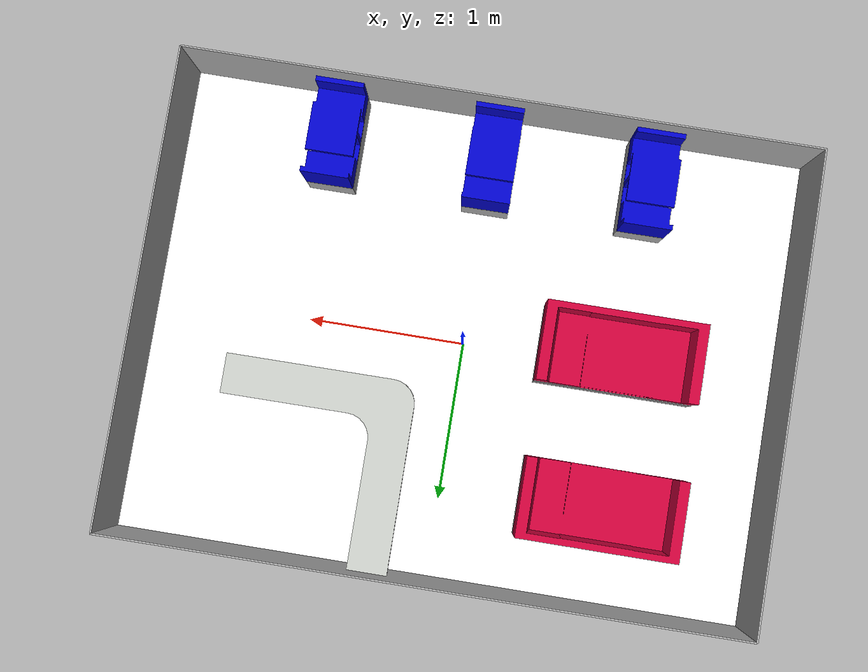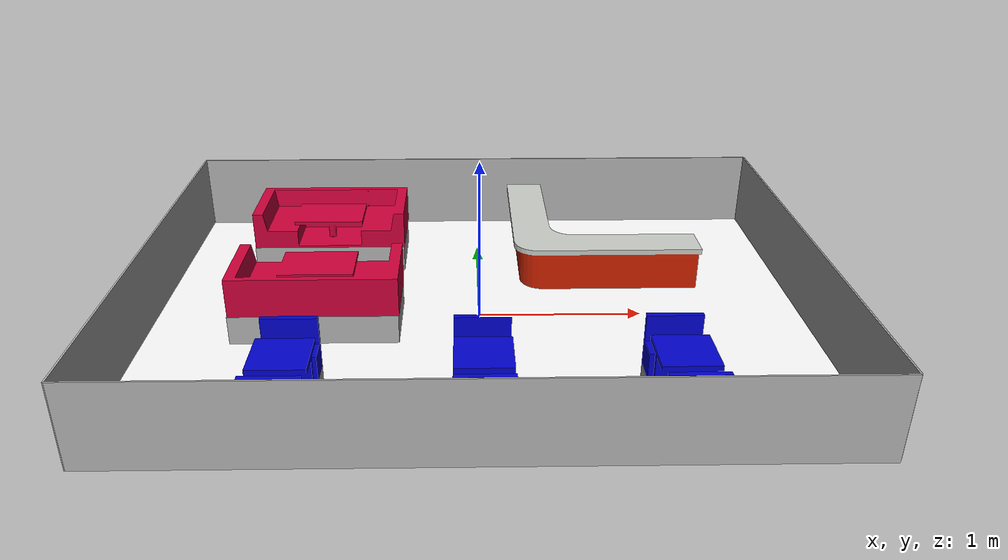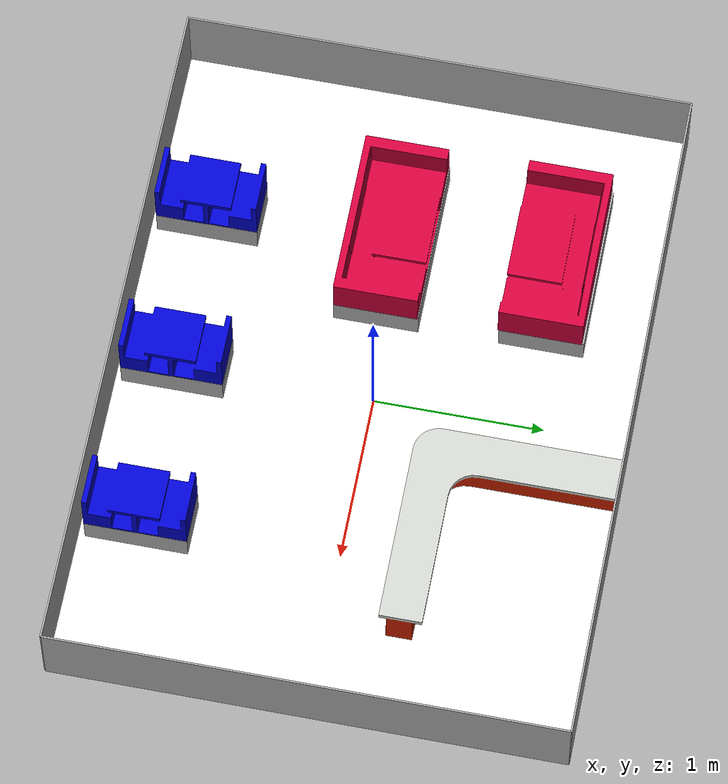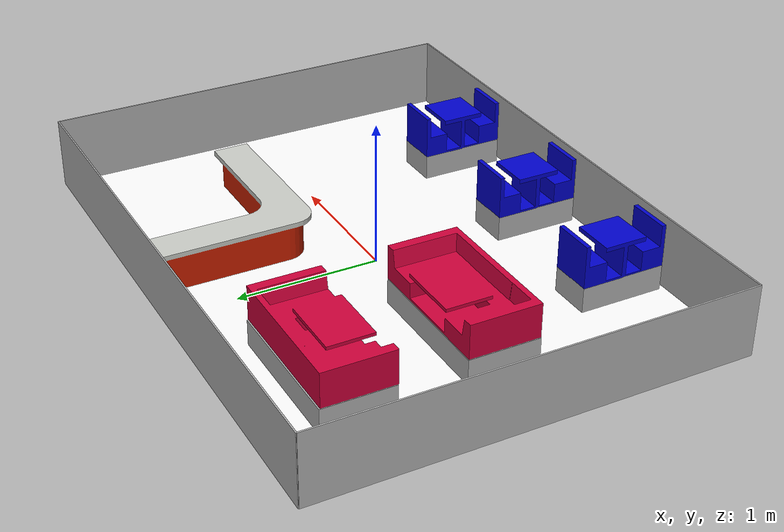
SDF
<sdf version="1.8">
 <world name="pinky_restaurant">
  <physics name="1ms" type="ignored">
   <max_step_size>0.001</max_step_size>
   <real_time_factor>1.0</real_time_factor>
  </physics>
  <plugin filename="gz-sim-physics-system" name="gz::sim::systems::Physics"/>
  <plugin filename="gz-sim-sensors-system" name="gz::sim::systems::Sensors">
   <render_engine>ogre2</render_engine>
  </plugin>
  <plugin filename="gz-sim-user-commands-system" name="gz::sim::systems::UserCommands"/>
  <plugin filename="gz-sim-scene-broadcaster-system" name="gz::sim::systems::SceneBroadcaster"/>
  <plugin filename="gz-sim-imu-system" name="gz::sim::systems::Imu"/>
  <light type="directional" name="sun">
   <cast_shadows>false</cast_shadows>
   <pose>0 0 2 0 0 0</pose>
   <diffuse>1 1 1 1</diffuse>
   <specular>1 1 1 1</specular>
   <attenuation><range>1000</range><constant>1</constant><linear>0</linear><quadratic>0</quadratic></attenuation>
   <direction>0 0 -1</direction>
  </light>
  <model name="logo">
   <static>true</static>
   <link name="logo_link">
    <visual name="logo_visual">
     <geometry><plane><normal>0 0 1</normal><size>4 3</size></plane></geometry>
     <material>
      <diffuse>1 1 1 1</diffuse>
      <specular>0.6 0.6 0.6 1</specular>
      <pbr><metal><albedo_map>file://img/pinklab_half.jpg</albedo_map></metal></pbr>
     </material>
    </visual>
    <collision name="logo_collision">
     <geometry><plane><normal>0 0 1</normal><size>4 2</size></plane></geometry>
     <surface><contact><collide_without_contact>true</collide_without_contact></contact></surface>
    </collision>
   </link>
  </model>
  <model name="station">
   <static>true</static>
   <pose>0.9 0.6 0 0 0 -3.14</pose>
   <link name="station_link">
    <visual name="station_visual">
     <geometry><mesh><uri>model://obj/station.dae</uri><scale>1 1 0.7</scale></mesh></geometry>
    </visual>
    <collision name="station_collision">
     <geometry><mesh><uri>model://obj/station.dae</uri><scale>1 1 0.7</scale></mesh></geometry>
    </collision>
   </link>
  </model>
  <model name="table1">
   <static>true</static>
   <pose>1.0 -1.157 0.18 0 0 -1.57</pose>
   <link name="table1_link">
    <visual name="table1_visual">
     <geometry><mesh><uri>model://obj/table.dae</uri><scale>1 1 1</scale></mesh></geometry>
    </visual>
    <collision name="table1_collision">
     <geometry><mesh><uri>model://obj/table.dae</uri><scale>1 1 1</scale></mesh></geometry>
    </collision>
   </link>
  </model>
  <model name="table1_box">
   <static>true</static>
   <pose>1.0 -1.157 0.09 0 0 0</pose>
   <link name="table1_box_link">
    <visual name="table1_box_visual">
     <geometry><box><size>0.3 0.6 0.18</size></box></geometry>
     <material><diffuse>0.7 0.7 0.7 1</diffuse><specular>0.2 0.2 0.2 1</specular></material>
    </visual>
    <collision name="table1_box_collision"><geometry><box><size>0.3 0.6 0.18</size></box></geometry></collision>
   </link>
  </model>
  <model name="table2">
   <static>true</static>
   <pose>0 -1.157 0.18 0 0 -1.57</pose>
   <link name="table2_link">
    <visual name="table2_visual">
     <geometry><mesh><uri>model://obj/table.dae</uri><scale>1 1 1</scale></mesh></geometry>
    </visual>
    <collision name="table2_collision">
     <geometry><mesh><uri>model://obj/table.dae</uri><scale>1 1 1</scale></mesh></geometry>
    </collision>
   </link>
  </model>
  <model name="table2_box">
   <static>true</static>
   <pose>0 -1.157 0.09 0 0 0</pose>
   <link name="table2_box_link">
    <visual name="table2_box_visual">
     <geometry><box><size>0.3 0.6 0.18</size></box></geometry>
     <material><diffuse>0.7 0.7 0.7 1</diffuse><specular>0.2 0.2 0.2 1</specular></material>
    </visual>
    <collision name="table2_box_collision"><geometry><box><size>0.3 0.6 0.18</size></box></geometry></collision>
   </link>
  </model>
  <model name="table3">
   <static>true</static>
   <pose>-1 -1.157 0.18 0 0 -1.57</pose>
   <link name="table3_link">
    <visual name="table3_visual">
     <geometry><mesh><uri>model://obj/table.dae</uri><scale>1 1 1</scale></mesh></geometry>
    </visual>
    <collision name="table3_collision">
     <geometry><mesh><uri>model://obj/table.dae</uri><scale>1 1 1</scale></mesh></geometry>
    </collision>
   </link>
  </model>
  <model name="table3_box">
   <static>true</static>
   <pose>-1.0 -1.157 0.09 0 0 0</pose>
   <link name="table3_box_link">
    <visual name="table3_box_visual">
     <geometry><box><size>0.3 0.6 0.18</size></box></geometry>
     <material><diffuse>0.7 0.7 0.7 1</diffuse><specular>0.2 0.2 0.2 1</specular></material>
    </visual>
    <collision name="table3_box_collision"><geometry><box><size>0.3 0.6 0.18</size></box></geometry></collision>
   </link>
  </model>
  <model name="table4">
   <static>true</static>
   <pose>-1.0 -0.0 0.18 0 0 -1.57</pose>
   <link name="table4_link">
    <visual name="table4_visual">
     <geometry><mesh><uri>model://obj/table2.dae</uri><scale>1.5 2.5 1.5</scale></mesh></geometry>
    </visual>
    <collision name="table4_collision">
     <geometry><mesh><uri>model://obj/table2.dae</uri><scale>1.5 2.5 1.5</scale></mesh></geometry>
    </collision>
   </link>
  </model>
  <model name="table4_box">
   <static>true</static>
   <pose>-0.98 -0.08 0.09 0 0 0</pose>
   <link name="table4_box_link">
    <visual name="table4_box_visual">
     <geometry><box><size>1.0 0.5 0.18</size></box></geometry>
     <material><diffuse>0.7 0.7 0.7 1</diffuse><specular>0.2 0.2 0.2 1</specular></material>
    </visual>
    <collision name="table4_box_collision"><geometry><box><size>1.0 0.5 0.18</size></box></geometry></collision>
   </link>
  </model>
  <model name="table5">
   <static>true</static>
   <pose>-0.97 0.8 0.18 0 0 1.57</pose>
   <link name="table5_link">
    <visual name="table5_visual">
     <geometry><mesh><uri>model://obj/table2.dae</uri><scale>1.5 2.5 1.5</scale></mesh></geometry>
    </visual>
    <collision name="table5_collision">
     <geometry><mesh><uri>model://obj/table2.dae</uri><scale>1.5 2.5 1.5</scale></mesh></geometry>
    </collision>
   </link>
  </model>
  <model name="table5_box">
   <static>true</static>
   <pose>-1.00 0.89 0.09 0 0 0</pose>
   <link name="table5_box_link">
    <visual name="table5_box_visual">
     <geometry><box><size>1.0 0.5 0.18</size></box></geometry>
     <material><diffuse>0.7 0.7 0.7 1</diffuse><specular>0.2 0.2 0.2 1</specular></material>
    </visual>
    <collision name="table5_box_collision"><geometry><box><size>1.0 0.5 0.18</size></box></geometry></collision>
   </link>
  </model>
  <model name="wall_front">
   <static>true</static>
   <pose>0 1.5 0.25 0 0 0</pose>
   <link name="wall_link_front">
    <visual name="wall_visual_front">
     <geometry><box><size>4 0.01 0.5</size></box></geometry>
     <material><diffuse>0.7 0.7 0.7 1</diffuse><specular>0.2 0.2 0.2 1</specular></material>
    </visual>
    <collision name="wall_collision_front"><geometry><box><size>4 0.01 0.5</size></box></geometry></collision>
   </link>
  </model>
  <model name="wall_back">
   <static>true</static>
   <pose>0 -1.5 0.25 0 0 3.14</pose>
   <link name="wall_link_back">
    <visual name="wall_visual_back">
     <geometry><box><size>4 0.01 0.5</size></box></geometry>
     <material><diffuse>0.7 0.7 0.7 1</diffuse><specular>0.2 0.2 0.2 1</specular></material>
    </visual>
    <collision name="wall_collision_back"><geometry><box><size>4 0.01 0.5</size></box></geometry></collision>
   </link>
  </model>
  <model name="wall_left">
   <static>true</static>
   <pose>-2 0 0.25 0 0 1.57</pose>
   <link name="wall_link_left">
    <visual name="wall_visual_left">
     <geometry><box><size>3 0.01 0.5</size></box></geometry>
     <material><diffuse>0.7 0.7 0.7 1</diffuse><specular>0.2 0.2 0.2 1</specular></material>
    </visual>
    <collision name="wall_collision_left"><geometry><box><size>3 0.01 0.5</size></box></geometry></collision>
   </link>
  </model>
  <model name="wall_right">
   <static>true</static>
   <pose>2 0 0.25 0 0 -1.57</pose>
   <link name="wall_link_right">
    <visual name="wall_visual_right">
     <geometry><box><size>3 0.01 0.5</size></box></geometry>
     <material><diffuse>0.7 0.7 0.7 1</diffuse><specular>0.2 0.2 0.2 1</specular></material>
    </visual>
    <collision name="wall_collision_right"><geometry><box><size>3 0.01 0.5</size></box></geometry></collision>
   </link>
  </model>
  <model name="camera">
   <static>true</static>
   <pose>0 0 1.6 0 1.57 1.57</pose>
   <link name="link">
    <pose>0.05 0.05 0.05 0 0 0</pose>
    <inertial>
     <mass>0.1</mass>
     <inertia><ixx>0.000166667</ixx><iyy>0.000166667</iyy><izz>0.000166667</izz></inertia>
    </inertial>
    <collision name="collision"><geometry><box><size>0.1 0.1 0.1</size></box></geometry></collision>
    <sensor name="camera" type="camera">
     <camera>
      <horizontal_fov>2.094</horizontal_fov>
      <image><width>640</width><height>480</height></image>
      <clip><near>0.1</near><far>100</far></clip>
     </camera>
     <always_on>1</always_on>
     <update_rate>30</update_rate>
     <visualize>true</visualize>
     <topic>camera</topic>
    </sensor>
   </link>
  </model>
 </world>
</sdf>
